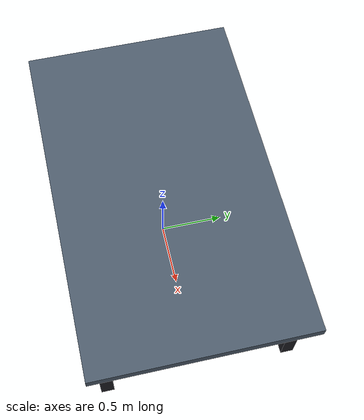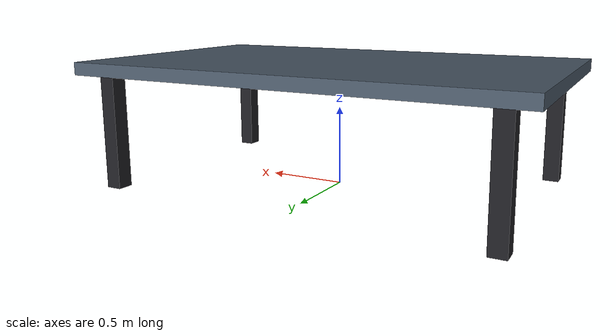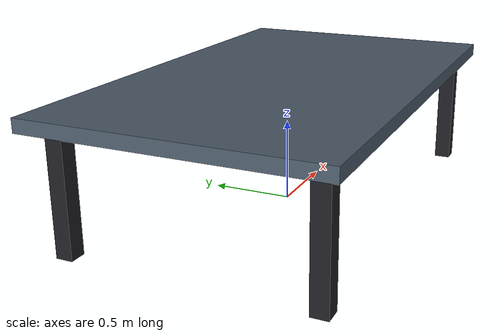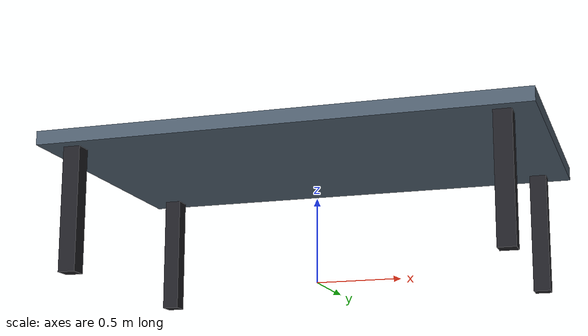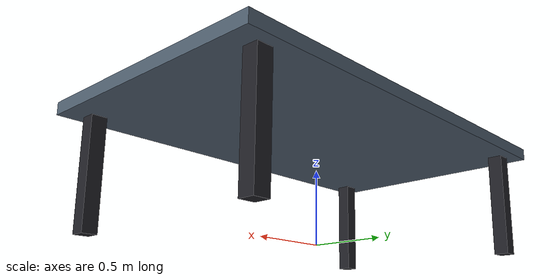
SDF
<?xml version="1.0"?>

<sdf version="1.10">

  <model name="work_table">

    <!-- The table is part of the fixed environment -->
    <static>true</static>

    <link name="table_link">

      <!-- Tabletop                                             -->

      <collision name="tabletop_collision">

        <pose>0 0 0.76 0 0 0</pose>

        <geometry>

          <box>

            <size>2.80 1.70 0.08</size>

          </box>

        </geometry>

      </collision>

      <visual name="tabletop_visual">

        <pose>0 0 0.76 0 0 0</pose>

        <geometry>

          <box>

            <size>2.80 1.70 0.08</size>

          </box>

        </geometry>

        <material>

          <ambient>0.22 0.27 0.32 1</ambient>

          <diffuse>0.30 0.36 0.42 1</diffuse>

          <specular>0.18 0.18 0.18 1</specular>

        </material>

      </visual>

      <!-- Front-left leg                                       -->

      <collision name="front_left_leg_collision">

        <pose>1.22 -0.72 0.36 0 0 0</pose>

        <geometry>

          <box>

            <size>0.10 0.10 0.72</size>

          </box>

        </geometry>

      </collision>

      <visual name="front_left_leg_visual">

        <pose>1.22 -0.72 0.36 0 0 0</pose>

        <geometry>

          <box>

            <size>0.10 0.10 0.72</size>

          </box>

        </geometry>

        <material>

          <ambient>0.07 0.07 0.08 1</ambient>

          <diffuse>0.12 0.12 0.14 1</diffuse>

          <specular>0.20 0.20 0.20 1</specular>

        </material>

      </visual>

      <!-- Front-right leg                                      -->

      <collision name="front_right_leg_collision">

        <pose>1.22 0.72 0.36 0 0 0</pose>

        <geometry>

          <box>

            <size>0.10 0.10 0.72</size>

          </box>

        </geometry>

      </collision>

      <visual name="front_right_leg_visual">

        <pose>1.22 0.72 0.36 0 0 0</pose>

        <geometry>

          <box>

            <size>0.10 0.10 0.72</size>

          </box>

        </geometry>

        <material>

          <ambient>0.07 0.07 0.08 1</ambient>

          <diffuse>0.12 0.12 0.14 1</diffuse>

          <specular>0.20 0.20 0.20 1</specular>

        </material>

      </visual>

      <!-- Rear-left leg                                        -->

      <collision name="rear_left_leg_collision">

        <pose>-1.22 -0.72 0.36 0 0 0</pose>

        <geometry>

          <box>

            <size>0.10 0.10 0.72</size>

          </box>

        </geometry>

      </collision>

      <visual name="rear_left_leg_visual">

        <pose>-1.22 -0.72 0.36 0 0 0</pose>

        <geometry>

          <box>

            <size>0.10 0.10 0.72</size>

          </box>

        </geometry>

        <material>

          <ambient>0.07 0.07 0.08 1</ambient>

          <diffuse>0.12 0.12 0.14 1</diffuse>

          <specular>0.20 0.20 0.20 1</specular>

        </material>

      </visual>

      <!-- Rear-right leg                                       -->

      <collision name="rear_right_leg_collision">

        <pose>-1.22 0.72 0.36 0 0 0</pose>

        <geometry>

          <box>

            <size>0.10 0.10 0.72</size>

          </box>

        </geometry>

      </collision>

      <visual name="rear_right_leg_visual">

        <pose>-1.22 0.72 0.36 0 0 0</pose>

        <geometry>

          <box>

            <size>0.10 0.10 0.72</size>

          </box>

        </geometry>

        <material>

          <ambient>0.07 0.07 0.08 1</ambient>

          <diffuse>0.12 0.12 0.14 1</diffuse>

          <specular>0.20 0.20 0.20 1</specular>

        </material>

      </visual>

    </link>

  </model>

</sdf>
